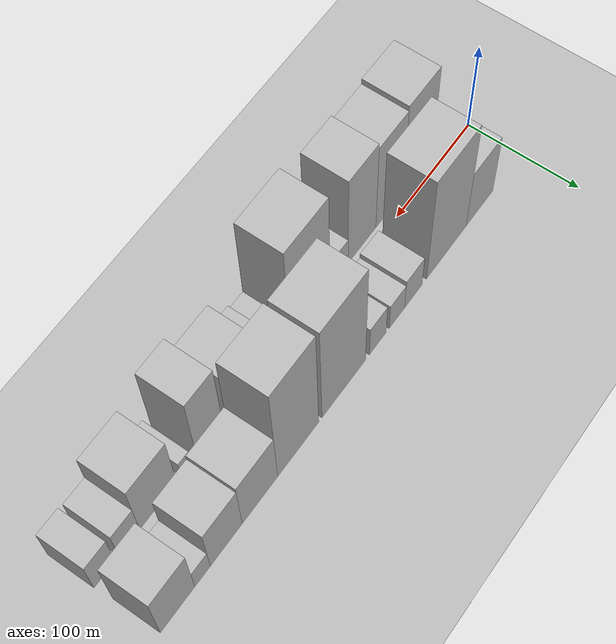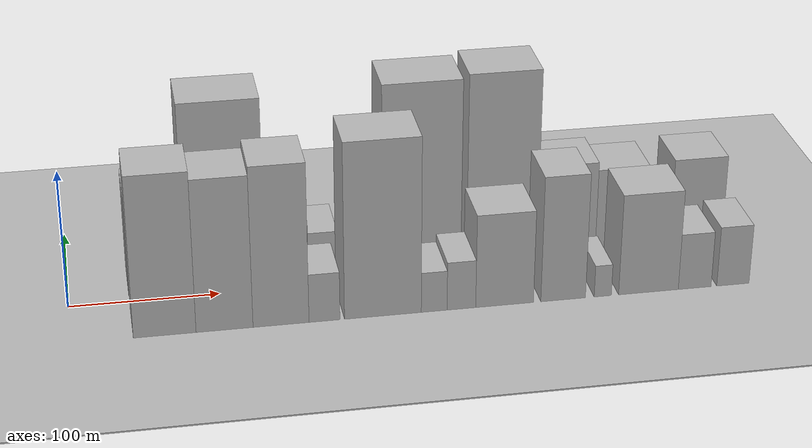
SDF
<?xml version="1.0" encoding="utf-8"?>

<sdf version="1.6">

   <world name="default">

      <gui fullscreen="0">

         <camera name="user_camera">

            <pose>-15 0 4.57585 0 0 0</pose>

            <view_controller>orbit</view_controller>

         </camera>

      </gui>

      <scene>

         <sky>

           <clouds>

             <speed>12</speed>

           </clouds>

         </sky>

         <ambient>0.4 0.4 0.4 1</ambient>

         <background>0.7 0.7 0.7 1</background>

         <shadows>1</shadows>

      </scene>

      <gravity>0 0 -9.8066</gravity>

      <magnetic_field>6e-06 2.3e-05 -4.2e-05</magnetic_field>

      <physics default="0" name="default_physics" type="ode">

         <ode>

            <solver>

               <type>quick</type>

               <iters>10</iters>

               <sor>1.0</sor>

               <use_dynamic_moi_rescaling>0</use_dynamic_moi_rescaling>

            </solver>

            <constraints>

               <cfm>0</cfm>

               <erp>0.2</erp>

               <contact_max_correcting_vel>100</contact_max_correcting_vel>

               <contact_surface_layer>0.001</contact_surface_layer>

            </constraints>

         </ode>

         <max_step_size>0.004</max_step_size>

         <real_time_factor>1</real_time_factor>

         <real_time_update_rate>250</real_time_update_rate>

      </physics>

      <light name="sun" type="directional">

         <cast_shadows>1</cast_shadows>

         <pose>0 0 10 0 0 0</pose>

         <diffuse>0.8 0.8 0.8 1</diffuse>

         <specular>0.2 0.2 0.2 1</specular>

         <attenuation>

            <range>1000</range>

            <constant>0.9</constant>

            <linear>0.01</linear>

            <quadratic>0.001</quadratic>

         </attenuation>

         <direction>-0.5 0.1 -0.9</direction>

      </light>

      <include>

         <name>ground_plane_1</name>

         <uri>model://HANNAS_ground_plane</uri>

         <pose>0 0 0  0 0 0</pose>

      </include>

      <include>

         <name>ground_plane_2</name>

         <uri>model://HANNAS_ground_plane</uri>

         <pose>100 0 0  0 0 0</pose>

      </include>

      <model name="building_1">

         <static>1</static>

         <pose frame="">58.8400 27.5000 0 0.000000 0.000000 1.570796</pose>

         <link name="link">

            <pose frame="">0 0 37.50 0 0 0</pose>

            <collision name="collision">

               <geometry>

                  <box>

                     <size>40.0000 37.6799 75.0000</size>

                  </box>

               </geometry>

               <max_contacts>10</max_contacts>

               <surface>

                  <contact>

                     <ode/>

                  </contact>

                  <bounce/>

                  <friction>

                     <torsional>

                        <ode/>

                     </torsional>

                     <ode/>

                  </friction>

               </surface>

            </collision>

            <visual name="visual">

               <cast_shadows>0</cast_shadows>

               <geometry>

                  <box>

                     <size>40.0000 37.6799 75.0000</size>

                  </box>

               </geometry>

               <material>

                  <script>

                     <uri>model://HANNAS_wall/materials/scripts</uri>

                     <uri>model://HANNAS_wall/materials/textures</uri>

                     <name>vrc/HANNAS_wall</name>

                  </script>

               </material>

            </visual>

            <self_collide>0</self_collide>

            <enable_wind>0</enable_wind>

            <kinematic>0</kinematic>

         </link>

      </model>

      <model name="building_2">

         <static>1</static>

         <pose frame="">104.6688 27.5000 0 0.000000 0.000000 1.570796</pose>

         <link name="link">

            <pose frame="">0 0 69.00 0 0 0</pose>

            <collision name="collision">

               <geometry>

                  <box>

                     <size>40.0000 53.9778 138.0000</size>

                  </box>

               </geometry>

               <max_contacts>10</max_contacts>

               <surface>

                  <contact>

                     <ode/>

                  </contact>

                  <bounce/>

                  <friction>

                     <torsional>

                        <ode/>

                     </torsional>

                     <ode/>

                  </friction>

               </surface>

            </collision>

            <visual name="visual">

               <cast_shadows>0</cast_shadows>

               <geometry>

                  <box>

                     <size>40.0000 53.9778 138.0000</size>

                  </box>

               </geometry>

               <material>

                  <script>

                     <uri>model://HANNAS_wall/materials/scripts</uri>

                     <uri>model://HANNAS_wall/materials/textures</uri>

                     <name>vrc/HANNAS_wall</name>

                  </script>

               </material>

            </visual>

            <self_collide>0</self_collide>

            <enable_wind>0</enable_wind>

            <kinematic>0</kinematic>

         </link>

      </model>

      <model name="building_3">

         <static>1</static>

         <pose frame="">149.2676 27.5000 0 0.000000 0.000000 1.570796</pose>

         <link name="link">

            <pose frame="">0 0 21.00 0 0 0</pose>

            <collision name="collision">

               <geometry>

                  <box>

                     <size>40.0000 23.2197 42.0000</size>

                  </box>

               </geometry>

               <max_contacts>10</max_contacts>

               <surface>

                  <contact>

                     <ode/>

                  </contact>

                  <bounce/>

                  <friction>

                     <torsional>

                        <ode/>

                     </torsional>

                     <ode/>

                  </friction>

               </surface>

            </collision>

            <visual name="visual">

               <cast_shadows>0</cast_shadows>

               <geometry>

                  <box>

                     <size>40.0000 23.2197 42.0000</size>

                  </box>

               </geometry>

               <material>

                  <script>

                     <uri>model://HANNAS_wall/materials/scripts</uri>

                     <uri>model://HANNAS_wall/materials/textures</uri>

                     <name>vrc/HANNAS_wall</name>

                  </script>

               </material>

            </visual>

            <self_collide>0</self_collide>

            <enable_wind>0</enable_wind>

            <kinematic>0</kinematic>

         </link>

      </model>

      <model name="building_4">

         <static>1</static>

         <pose frame="">170.9201 27.5000 0 0.000000 0.000000 1.570796</pose>

         <link name="link">

            <pose frame="">0 0 18.00 0 0 0</pose>

            <collision name="collision">

               <geometry>

                  <box>

                     <size>40.0000 20.0852 36.0000</size>

                  </box>

               </geometry>

               <max_contacts>10</max_contacts>

               <surface>

                  <contact>

                     <ode/>

                  </contact>

                  <bounce/>

                  <friction>

                     <torsional>

                        <ode/>

                     </torsional>

                     <ode/>

                  </friction>

               </surface>

            </collision>

            <visual name="visual">

               <cast_shadows>0</cast_shadows>

               <geometry>

                  <box>

                     <size>40.0000 20.0852 36.0000</size>

                  </box>

               </geometry>

               <material>

                  <script>

                     <uri>model://HANNAS_wall/materials/scripts</uri>

                     <uri>model://HANNAS_wall/materials/textures</uri>

                     <name>vrc/HANNAS_wall</name>

                  </script>

               </material>

            </visual>

            <self_collide>0</self_collide>

            <enable_wind>0</enable_wind>

            <kinematic>0</kinematic>

         </link>

      </model>

      <model name="building_5">

         <static>1</static>

         <pose frame="">195.6894 27.5000 0 0.000000 0.000000 1.570796</pose>

         <link name="link">

            <pose frame="">0 0 21.00 0 0 0</pose>

            <collision name="collision">

               <geometry>

                  <box>

                     <size>40.0000 21.4534 42.0000</size>

                  </box>

               </geometry>

               <max_contacts>10</max_contacts>

               <surface>

                  <contact>

                     <ode/>

                  </contact>

                  <bounce/>

                  <friction>

                     <torsional>

                        <ode/>

                     </torsional>

                     <ode/>

                  </friction>

               </surface>

            </collision>

            <visual name="visual">

               <cast_shadows>0</cast_shadows>

               <geometry>

                  <box>

                     <size>40.0000 21.4534 42.0000</size>

                  </box>

               </geometry>

               <material>

                  <script>

                     <uri>model://HANNAS_wall/materials/scripts</uri>

                     <uri>model://HANNAS_wall/materials/textures</uri>

                     <name>vrc/HANNAS_wall</name>

                  </script>

               </material>

            </visual>

            <self_collide>0</self_collide>

            <enable_wind>0</enable_wind>

            <kinematic>0</kinematic>

         </link>

      </model>

      <model name="building_6">

         <static>1</static>

         <pose frame="">238.5602 27.5000 0 0.000000 0.000000 1.570796</pose>

         <link name="link">

            <pose frame="">0 0 70.50 0 0 0</pose>

            <collision name="collision">

               <geometry>

                  <box>

                     <size>40.0000 54.2883 141.0000</size>

                  </box>

               </geometry>

               <max_contacts>10</max_contacts>

               <surface>

                  <contact>

                     <ode/>

                  </contact>

                  <bounce/>

                  <friction>

                     <torsional>

                        <ode/>

                     </torsional>

                     <ode/>

                  </friction>

               </surface>

            </collision>

            <visual name="visual">

               <cast_shadows>0</cast_shadows>

               <geometry>

                  <box>

                     <size>40.0000 54.2883 141.0000</size>

                  </box>

               </geometry>

               <material>

                  <script>

                     <uri>model://HANNAS_wall/materials/scripts</uri>

                     <uri>model://HANNAS_wall/materials/textures</uri>

                     <name>vrc/HANNAS_wall</name>

                  </script>

               </material>

            </visual>

            <self_collide>0</self_collide>

            <enable_wind>0</enable_wind>

            <kinematic>0</kinematic>

         </link>

      </model>

      <model name="building_7">

         <static>1</static>

         <pose frame="">294.3670 27.5000 0 0.000000 0.000000 1.570796</pose>

         <link name="link">

            <pose frame="">0 0 72.00 0 0 0</pose>

            <collision name="collision">

               <geometry>

                  <box>

                     <size>40.0000 49.3252 144.0000</size>

                  </box>

               </geometry>

               <max_contacts>10</max_contacts>

               <surface>

                  <contact>

                     <ode/>

                  </contact>

                  <bounce/>

                  <friction>

                     <torsional>

                        <ode/>

                     </torsional>

                     <ode/>

                  </friction>

               </surface>

            </collision>

            <visual name="visual">

               <cast_shadows>0</cast_shadows>

               <geometry>

                  <box>

                     <size>40.0000 49.3252 144.0000</size>

                  </box>

               </geometry>

               <material>

                  <script>

                     <uri>model://HANNAS_wall/materials/scripts</uri>

                     <uri>model://HANNAS_wall/materials/textures</uri>

                     <name>vrc/HANNAS_wall</name>

                  </script>

               </material>

            </visual>

            <self_collide>0</self_collide>

            <enable_wind>0</enable_wind>

            <kinematic>0</kinematic>

         </link>

      </model>

      <model name="building_8">

         <static>1</static>

         <pose frame="">339.6621 27.5000 0 0.000000 0.000000 1.570796</pose>

         <link name="link">

            <pose frame="">0 0 36.00 0 0 0</pose>

            <collision name="collision">

               <geometry>

                  <box>

                     <size>40.0000 41.2650 72.0000</size>

                  </box>

               </geometry>

               <max_contacts>10</max_contacts>

               <surface>

                  <contact>

                     <ode/>

                  </contact>

                  <bounce/>

                  <friction>

                     <torsional>

                        <ode/>

                     </torsional>

                     <ode/>

                  </friction>

               </surface>

            </collision>

            <visual name="visual">

               <cast_shadows>0</cast_shadows>

               <geometry>

                  <box>

                     <size>40.0000 41.2650 72.0000</size>

                  </box>

               </geometry>

               <material>

                  <script>

                     <uri>model://HANNAS_wall/materials/scripts</uri>

                     <uri>model://HANNAS_wall/materials/textures</uri>

                     <name>vrc/HANNAS_wall</name>

                  </script>

               </material>

            </visual>

            <self_collide>0</self_collide>

            <enable_wind>0</enable_wind>

            <kinematic>0</kinematic>

         </link>

      </model>

      <model name="building_9">

         <static>1</static>

         <pose frame="">378.3962 27.5000 0 0.000000 0.000000 1.570796</pose>

         <link name="link">

            <pose frame="">0 0 33.00 0 0 0</pose>

            <collision name="collision">

               <geometry>

                  <box>

                     <size>40.0000 36.2031 66.0000</size>

                  </box>

               </geometry>

               <max_contacts>10</max_contacts>

               <surface>

                  <contact>

                     <ode/>

                  </contact>

                  <bounce/>

                  <friction>

                     <torsional>

                        <ode/>

                     </torsional>

                     <ode/>

                  </friction>

               </surface>

            </collision>

            <visual name="visual">

               <cast_shadows>0</cast_shadows>

               <geometry>

                  <box>

                     <size>40.0000 36.2031 66.0000</size>

                  </box>

               </geometry>

               <material>

                  <script>

                     <uri>model://HANNAS_wall/materials/scripts</uri>

                     <uri>model://HANNAS_wall/materials/textures</uri>

                     <name>vrc/HANNAS_wall</name>

                  </script>

               </material>

            </visual>

            <self_collide>0</self_collide>

            <enable_wind>0</enable_wind>

            <kinematic>0</kinematic>

         </link>

      </model>

      <model name="building_10">

         <static>1</static>

         <pose frame="">405.1131 27.5000 0 0.000000 0.000000 1.570796</pose>

         <link name="link">

            <pose frame="">0 0 15.00 0 0 0</pose>

            <collision name="collision">

               <geometry>

                  <box>

                     <size>40.0000 17.2309 30.0000</size>

                  </box>

               </geometry>

               <max_contacts>10</max_contacts>

               <surface>

                  <contact>

                     <ode/>

                  </contact>

                  <bounce/>

                  <friction>

                     <torsional>

                        <ode/>

                     </torsional>

                     <ode/>

                  </friction>

               </surface>

            </collision>

            <visual name="visual">

               <cast_shadows>0</cast_shadows>

               <geometry>

                  <box>

                     <size>40.0000 17.2309 30.0000</size>

                  </box>

               </geometry>

               <material>

                  <script>

                     <uri>model://HANNAS_wall/materials/scripts</uri>

                     <uri>model://HANNAS_wall/materials/textures</uri>

                     <name>vrc/HANNAS_wall</name>

                  </script>

               </material>

            </visual>

            <self_collide>0</self_collide>

            <enable_wind>0</enable_wind>

            <kinematic>0</kinematic>

         </link>

      </model>

      <model name="building_11">

         <static>1</static>

         <pose frame="">432.5110 27.5000 0 0.000000 0.000000 1.570796</pose>

         <link name="link">

            <pose frame="">0 0 34.50 0 0 0</pose>

            <collision name="collision">

               <geometry>

                  <box>

                     <size>40.0000 37.5649 69.0000</size>

                  </box>

               </geometry>

               <max_contacts>10</max_contacts>

               <surface>

                  <contact>

                     <ode/>

                  </contact>

                  <bounce/>

                  <friction>

                     <torsional>

                        <ode/>

                     </torsional>

                     <ode/>

                  </friction>

               </surface>

            </collision>

            <visual name="visual">

               <cast_shadows>0</cast_shadows>

               <geometry>

                  <box>

                     <size>40.0000 37.5649 69.0000</size>

                  </box>

               </geometry>

               <material>

                  <script>

                     <uri>model://HANNAS_wall/materials/scripts</uri>

                     <uri>model://HANNAS_wall/materials/textures</uri>

                     <name>vrc/HANNAS_wall</name>

                  </script>

               </material>

            </visual>

            <self_collide>0</self_collide>

            <enable_wind>0</enable_wind>

            <kinematic>0</kinematic>

         </link>

      </model>

      <model name="building_12">

         <static>1</static>

         <pose frame="">60.1853 -27.5000 0 0.000000 0.000000 1.570796</pose>

         <link name="link">

            <pose frame="">0 0 58.50 0 0 0</pose>

            <collision name="collision">

               <geometry>

                  <box>

                     <size>40.0000 40.3706 117.0000</size>

                  </box>

               </geometry>

               <max_contacts>10</max_contacts>

               <surface>

                  <contact>

                     <ode/>

                  </contact>

                  <bounce/>

                  <friction>

                     <torsional>

                        <ode/>

                     </torsional>

                     <ode/>

                  </friction>

               </surface>

            </collision>

            <visual name="visual">

               <cast_shadows>0</cast_shadows>

               <geometry>

                  <box>

                     <size>40.0000 40.3706 117.0000</size>

                  </box>

               </geometry>

               <material>

                  <script>

                     <uri>model://HANNAS_wall/materials/scripts</uri>

                     <uri>model://HANNAS_wall/materials/textures</uri>

                     <name>vrc/HANNAS_wall</name>

                  </script>

               </material>

            </visual>

            <self_collide>0</self_collide>

            <enable_wind>0</enable_wind>

            <kinematic>0</kinematic>

         </link>

      </model>

      <model name="building_13">

         <static>1</static>

         <pose frame="">98.8434 -27.5000 0 0.000000 0.000000 1.570796</pose>

         <link name="link">

            <pose frame="">0 0 55.50 0 0 0</pose>

            <collision name="collision">

               <geometry>

                  <box>

                     <size>40.0000 36.9456 111.0000</size>

                  </box>

               </geometry>

               <max_contacts>10</max_contacts>

               <surface>

                  <contact>

                     <ode/>

                  </contact>

                  <bounce/>

                  <friction>

                     <torsional>

                        <ode/>

                     </torsional>

                     <ode/>

                  </friction>

               </surface>

            </collision>

            <visual name="visual">

               <cast_shadows>0</cast_shadows>

               <geometry>

                  <box>

                     <size>40.0000 36.9456 111.0000</size>

                  </box>

               </geometry>

               <material>

                  <script>

                     <uri>model://HANNAS_wall/materials/scripts</uri>

                     <uri>model://HANNAS_wall/materials/textures</uri>

                     <name>vrc/HANNAS_wall</name>

                  </script>

               </material>

            </visual>

            <self_collide>0</self_collide>

            <enable_wind>0</enable_wind>

            <kinematic>0</kinematic>

         </link>

      </model>

      <model name="building_14">

         <static>1</static>

         <pose frame="">135.6205 -27.5000 0 0.000000 0.000000 1.570796</pose>

         <link name="link">

            <pose frame="">0 0 58.50 0 0 0</pose>

            <collision name="collision">

               <geometry>

                  <box>

                     <size>40.0000 36.6086 117.0000</size>

                  </box>

               </geometry>

               <max_contacts>10</max_contacts>

               <surface>

                  <contact>

                     <ode/>

                  </contact>

                  <bounce/>

                  <friction>

                     <torsional>

                        <ode/>

                     </torsional>

                     <ode/>

                  </friction>

               </surface>

            </collision>

            <visual name="visual">

               <cast_shadows>0</cast_shadows>

               <geometry>

                  <box>

                     <size>40.0000 36.6086 117.0000</size>

                  </box>

               </geometry>

               <material>

                  <script>

                     <uri>model://HANNAS_wall/materials/scripts</uri>

                     <uri>model://HANNAS_wall/materials/textures</uri>

                     <name>vrc/HANNAS_wall</name>

                  </script>

               </material>

            </visual>

            <self_collide>0</self_collide>

            <enable_wind>0</enable_wind>

            <kinematic>0</kinematic>

         </link>

      </model>

      <model name="building_15">

         <static>1</static>

         <pose frame="">164.1002 -27.5000 0 0.000000 0.000000 1.570796</pose>

         <link name="link">

            <pose frame="">0 0 18.00 0 0 0</pose>

            <collision name="collision">

               <geometry>

                  <box>

                     <size>40.0000 20.3509 36.0000</size>

                  </box>

               </geometry>

               <max_contacts>10</max_contacts>

               <surface>

                  <contact>

                     <ode/>

                  </contact>

                  <bounce/>

                  <friction>

                     <torsional>

                        <ode/>

                     </torsional>

                     <ode/>

                  </friction>

               </surface>

            </collision>

            <visual name="visual">

               <cast_shadows>0</cast_shadows>

               <geometry>

                  <box>

                     <size>40.0000 20.3509 36.0000</size>

                  </box>

               </geometry>

               <material>

                  <script>

                     <uri>model://HANNAS_wall/materials/scripts</uri>

                     <uri>model://HANNAS_wall/materials/textures</uri>

                     <name>vrc/HANNAS_wall</name>

                  </script>

               </material>

            </visual>

            <self_collide>0</self_collide>

            <enable_wind>0</enable_wind>

            <kinematic>0</kinematic>

         </link>

      </model>

      <model name="building_16">

         <static>1</static>

         <pose frame="">202.7653 -27.5000 0 0.000000 0.000000 1.570796</pose>

         <link name="link">

            <pose frame="">0 0 64.50 0 0 0</pose>

            <collision name="collision">

               <geometry>

                  <box>

                     <size>40.0000 50.9794 129.0000</size>

                  </box>

               </geometry>

               <max_contacts>10</max_contacts>

               <surface>

                  <contact>

                     <ode/>

                  </contact>

                  <bounce/>

                  <friction>

                     <torsional>

                        <ode/>

                     </torsional>

                     <ode/>

                  </friction>

               </surface>

            </collision>

            <visual name="visual">

               <cast_shadows>0</cast_shadows>

               <geometry>

                  <box>

                     <size>40.0000 50.9794 129.0000</size>

                  </box>

               </geometry>

               <material>

                  <script>

                     <uri>model://HANNAS_wall/materials/scripts</uri>

                     <uri>model://HANNAS_wall/materials/textures</uri>

                     <name>vrc/HANNAS_wall</name>

                  </script>

               </material>

            </visual>

            <self_collide>0</self_collide>

            <enable_wind>0</enable_wind>

            <kinematic>0</kinematic>

         </link>

      </model>

      <model name="building_17">

         <static>1</static>

         <pose frame="">236.8703 -27.5000 0 0.000000 0.000000 1.570796</pose>

         <link name="link">

            <pose frame="">0 0 15.00 0 0 0</pose>

            <collision name="collision">

               <geometry>

                  <box>

                     <size>40.0000 17.2304 30.0000</size>

                  </box>

               </geometry>

               <max_contacts>10</max_contacts>

               <surface>

                  <contact>

                     <ode/>

                  </contact>

                  <bounce/>

                  <friction>

                     <torsional>

                        <ode/>

                     </torsional>

                     <ode/>

                  </friction>

               </surface>

            </collision>

            <visual name="visual">

               <cast_shadows>0</cast_shadows>

               <geometry>

                  <box>

                     <size>40.0000 17.2304 30.0000</size>

                  </box>

               </geometry>

               <material>

                  <script>

                     <uri>model://HANNAS_wall/materials/scripts</uri>

                     <uri>model://HANNAS_wall/materials/textures</uri>

                     <name>vrc/HANNAS_wall</name>

                  </script>

               </material>

            </visual>

            <self_collide>0</self_collide>

            <enable_wind>0</enable_wind>

            <kinematic>0</kinematic>

         </link>

      </model>

      <model name="building_18">

         <static>1</static>

         <pose frame="">255.1080 -27.5000 0 0.000000 0.000000 1.570796</pose>

         <link name="link">

            <pose frame="">0 0 18.00 0 0 0</pose>

            <collision name="collision">

               <geometry>

                  <box>

                     <size>40.0000 19.2450 36.0000</size>

                  </box>

               </geometry>

               <max_contacts>10</max_contacts>

               <surface>

                  <contact>

                     <ode/>

                  </contact>

                  <bounce/>

                  <friction>

                     <torsional>

                        <ode/>

                     </torsional>

                     <ode/>

                  </friction>

               </surface>

            </collision>

            <visual name="visual">

               <cast_shadows>0</cast_shadows>

               <geometry>

                  <box>

                     <size>40.0000 19.2450 36.0000</size>

                  </box>

               </geometry>

               <material>

                  <script>

                     <uri>model://HANNAS_wall/materials/scripts</uri>

                     <uri>model://HANNAS_wall/materials/textures</uri>

                     <name>vrc/HANNAS_wall</name>

                  </script>

               </material>

            </visual>

            <self_collide>0</self_collide>

            <enable_wind>0</enable_wind>

            <kinematic>0</kinematic>

         </link>

      </model>

      <model name="building_19">

         <static>1</static>

         <pose frame="">284.2855 -27.5000 0 0.000000 0.000000 1.570796</pose>

         <link name="link">

            <pose frame="">0 0 34.50 0 0 0</pose>

            <collision name="collision">

               <geometry>

                  <box>

                     <size>40.0000 39.1100 69.0000</size>

                  </box>

               </geometry>

               <max_contacts>10</max_contacts>

               <surface>

                  <contact>

                     <ode/>

                  </contact>

                  <bounce/>

                  <friction>

                     <torsional>

                        <ode/>

                     </torsional>

                     <ode/>

                  </friction>

               </surface>

            </collision>

            <visual name="visual">

               <cast_shadows>0</cast_shadows>

               <geometry>

                  <box>

                     <size>40.0000 39.1100 69.0000</size>

                  </box>

               </geometry>

               <material>

                  <script>

                     <uri>model://HANNAS_wall/materials/scripts</uri>

                     <uri>model://HANNAS_wall/materials/textures</uri>

                     <name>vrc/HANNAS_wall</name>

                  </script>

               </material>

            </visual>

            <self_collide>0</self_collide>

            <enable_wind>0</enable_wind>

            <kinematic>0</kinematic>

         </link>

      </model>

      <model name="building_20">

         <static>1</static>

         <pose frame="">324.0773 -27.5000 0 0.000000 0.000000 1.570796</pose>

         <link name="link">

            <pose frame="">0 0 46.50 0 0 0</pose>

            <collision name="collision">

               <geometry>

                  <box>

                     <size>40.0000 30.4735 93.0000</size>

                  </box>

               </geometry>

               <max_contacts>10</max_contacts>

               <surface>

                  <contact>

                     <ode/>

                  </contact>

                  <bounce/>

                  <friction>

                     <torsional>

                        <ode/>

                     </torsional>

                     <ode/>

                  </friction>

               </surface>

            </collision>

            <visual name="visual">

               <cast_shadows>0</cast_shadows>

               <geometry>

                  <box>

                     <size>40.0000 30.4735 93.0000</size>

                  </box>

               </geometry>

               <material>

                  <script>

                     <uri>model://HANNAS_wall/materials/scripts</uri>

                     <uri>model://HANNAS_wall/materials/textures</uri>

                     <name>vrc/HANNAS_wall</name>

                  </script>

               </material>

            </visual>

            <self_collide>0</self_collide>

            <enable_wind>0</enable_wind>

            <kinematic>0</kinematic>

         </link>

      </model>

      <model name="building_21">

         <static>1</static>

         <pose frame="">351.1966 -27.5000 0 0.000000 0.000000 1.570796</pose>

         <link name="link">

            <pose frame="">0 0 12.00 0 0 0</pose>

            <collision name="collision">

               <geometry>

                  <box>

                     <size>40.0000 11.7651 24.0000</size>

                  </box>

               </geometry>

               <max_contacts>10</max_contacts>

               <surface>

                  <contact>

                     <ode/>

                  </contact>

                  <bounce/>

                  <friction>

                     <torsional>

                        <ode/>

                     </torsional>

                     <ode/>

                  </friction>

               </surface>

            </collision>

            <visual name="visual">

               <cast_shadows>0</cast_shadows>

               <geometry>

                  <box>

                     <size>40.0000 11.7651 24.0000</size>

                  </box>

               </geometry>

               <material>

                  <script>

                     <uri>model://HANNAS_wall/materials/scripts</uri>

                     <uri>model://HANNAS_wall/materials/textures</uri>

                     <name>vrc/HANNAS_wall</name>

                  </script>

               </material>

            </visual>

            <self_collide>0</self_collide>

            <enable_wind>0</enable_wind>

            <kinematic>0</kinematic>

         </link>

      </model>

      <model name="building_22">

         <static>1</static>

         <pose frame="">382.7248 -27.5000 0 0.000000 0.000000 1.570796</pose>

         <link name="link">

            <pose frame="">0 0 37.50 0 0 0</pose>

            <collision name="collision">

               <geometry>

                  <box>

                     <size>40.0000 41.2914 75.0000</size>

                  </box>

               </geometry>

               <max_contacts>10</max_contacts>

               <surface>

                  <contact>

                     <ode/>

                  </contact>

                  <bounce/>

                  <friction>

                     <torsional>

                        <ode/>

                     </torsional>

                     <ode/>

                  </friction>

               </surface>

            </collision>

            <visual name="visual">

               <cast_shadows>0</cast_shadows>

               <geometry>

                  <box>

                     <size>40.0000 41.2914 75.0000</size>

                  </box>

               </geometry>

               <material>

                  <script>

                     <uri>model://HANNAS_wall/materials/scripts</uri>

                     <uri>model://HANNAS_wall/materials/textures</uri>

                     <name>vrc/HANNAS_wall</name>

                  </script>

               </material>

            </visual>

            <self_collide>0</self_collide>

            <enable_wind>0</enable_wind>

            <kinematic>0</kinematic>

         </link>

      </model>

      <model name="building_23">

         <static>1</static>

         <pose frame="">414.7781 -27.5000 0 0.000000 0.000000 1.570796</pose>

         <link name="link">

            <pose frame="">0 0 21.00 0 0 0</pose>

            <collision name="collision">

               <geometry>

                  <box>

                     <size>40.0000 22.8152 42.0000</size>

                  </box>

               </geometry>

               <max_contacts>10</max_contacts>

               <surface>

                  <contact>

                     <ode/>

                  </contact>

                  <bounce/>

                  <friction>

                     <torsional>

                        <ode/>

                     </torsional>

                     <ode/>

                  </friction>

               </surface>

            </collision>

            <visual name="visual">

               <cast_shadows>0</cast_shadows>

               <geometry>

                  <box>

                     <size>40.0000 22.8152 42.0000</size>

                  </box>

               </geometry>

               <material>

                  <script>

                     <uri>model://HANNAS_wall/materials/scripts</uri>

                     <uri>model://HANNAS_wall/materials/textures</uri>

                     <name>vrc/HANNAS_wall</name>

                  </script>

               </material>

            </visual>

            <self_collide>0</self_collide>

            <enable_wind>0</enable_wind>

            <kinematic>0</kinematic>

         </link>

      </model>

      <model name="building_24">

         <static>1</static>

         <pose frame="">441.4714 -27.5000 0 0.000000 0.000000 1.570796</pose>

         <link name="link">

            <pose frame="">0 0 22.50 0 0 0</pose>

            <collision name="collision">

               <geometry>

                  <box>

                     <size>40.0000 22.5715 45.0000</size>

                  </box>

               </geometry>

               <max_contacts>10</max_contacts>

               <surface>

                  <contact>

                     <ode/>

                  </contact>

                  <bounce/>

                  <friction>

                     <torsional>

                        <ode/>

                     </torsional>

                     <ode/>

                  </friction>

               </surface>

            </collision>

            <visual name="visual">

               <cast_shadows>0</cast_shadows>

               <geometry>

                  <box>

                     <size>40.0000 22.5715 45.0000</size>

                  </box>

               </geometry>

               <material>

                  <script>

                     <uri>model://HANNAS_wall/materials/scripts</uri>

                     <uri>model://HANNAS_wall/materials/textures</uri>

                     <name>vrc/HANNAS_wall</name>

                  </script>

               </material>

            </visual>

            <self_collide>0</self_collide>

            <enable_wind>0</enable_wind>

            <kinematic>0</kinematic>

         </link>

      </model>

   </world>

</sdf>

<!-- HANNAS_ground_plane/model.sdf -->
<sdf version="1.4">
<model name="HANNAS_ground_plane">
  <static>true</static>
    <link name="link">
      <collision name="collision">
        <geometry>
          <plane>
            <normal>0 0 1</normal>
            <size>1000 1000</size>
          </plane>
        </geometry>
        <surface>
          <friction>
            <ode>
              <mu>100</mu>
              <mu2>50</mu2>
            </ode>
          </friction>
        </surface>
      </collision>
      <visual name="visual">
        <cast_shadows>false</cast_shadows>
        <geometry>
          <plane>
            <normal>0 0 1</normal>
            <size>1000 1000</size>
          </plane>
        </geometry>
        <material>
          <script>
            <uri>model://HANNAS_ground_plane/materials/scripts/HANNAS_ground_plane.material</uri>
	    <uri>model://HANNAS_ground_plane/materials/textures</uri>
            <name>HANNASGroundPlane/Image</name>
          </script>
        </material>
      </visual>
    </link>
  </model>
</sdf>
